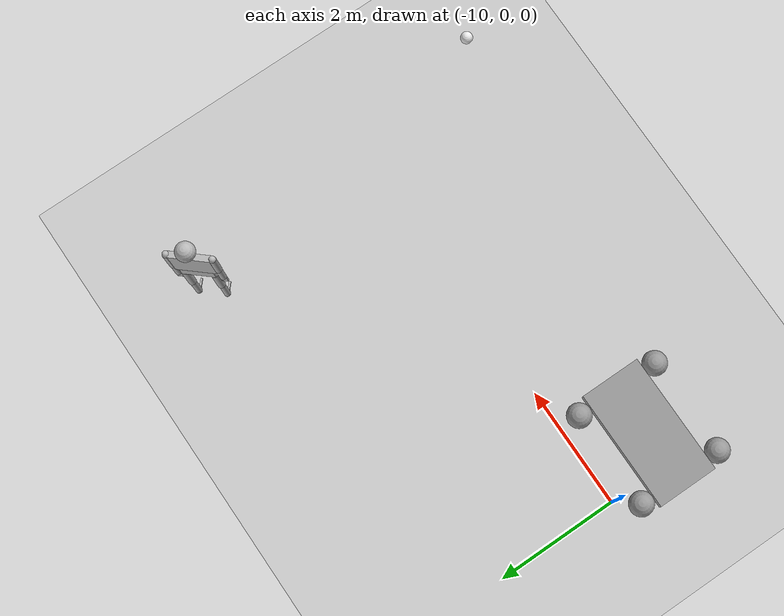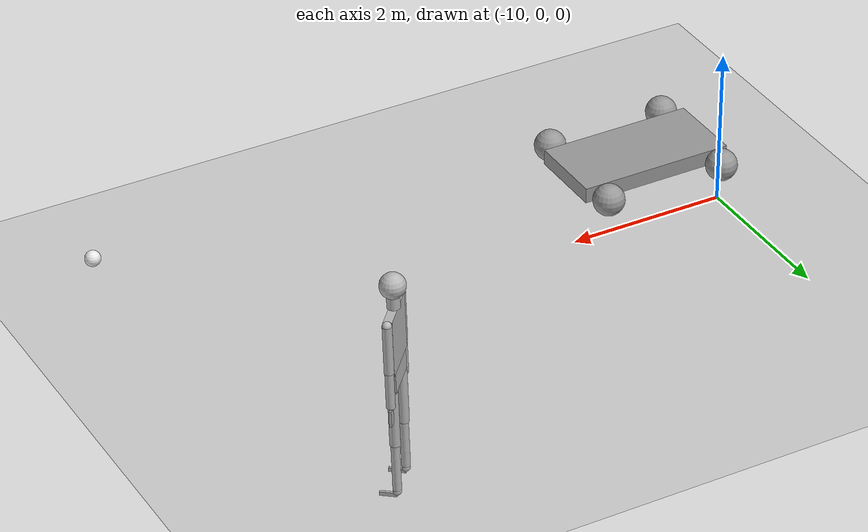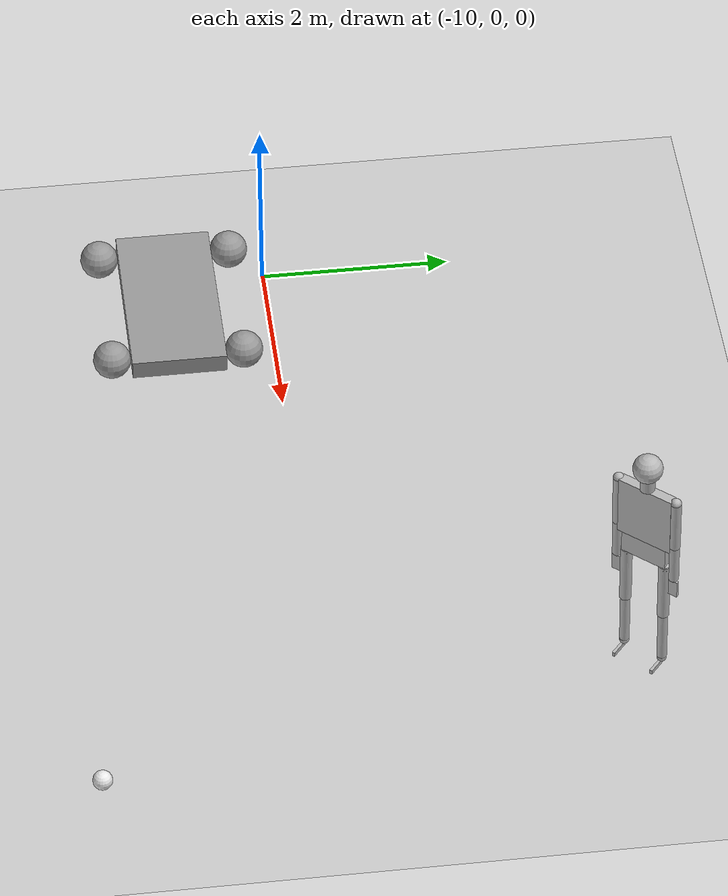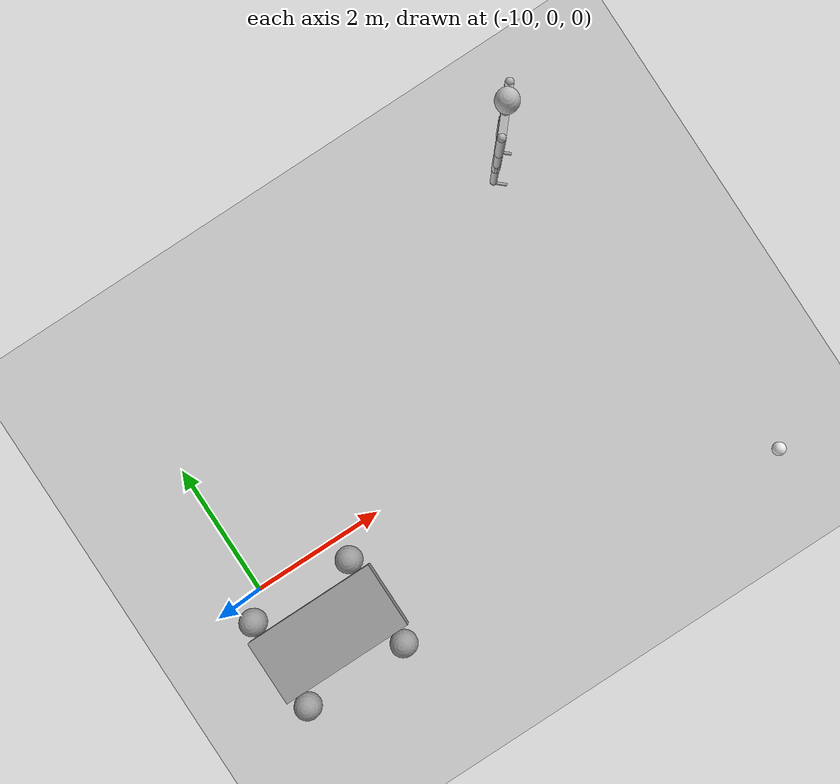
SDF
<sdf version="1.6">
 <world name="default">
  <model name="ground_plane">
   <static>1</static>
   <link name="link">
    <collision name="collision">
     <geometry><plane><normal>0 0 1</normal><size>100 100</size></plane></geometry>
     <surface>
      <contact><collide_bitmask>65535</collide_bitmask></contact>
      <friction><ode><mu>100</mu><mu2>50</mu2></ode></friction>
     </surface>
    </collision>
    <visual name="visual">
     <cast_shadows>0</cast_shadows>
     <geometry><plane><normal>0 0 1</normal><size>100 100</size></plane></geometry>
     <material>
      <script><uri>file://media/materials/scripts/gazebo.material</uri><name>Gazebo/Grey</name></script>
     </material>
    </visual>
   </link>
  </model>
  <model name="object">
   <link name="link_0">
    <pose>-2.35749 -2.62116 0.5 0 -0 0</pose>
    <inertial>
     <mass>1</mass>
     <inertia>
      <ixx>0.166667</ixx>
      <ixy>0</ixy>
      <ixz>0</ixz>
      <iyy>0.166667</iyy>
      <iyz>0</iyz>
      <izz>0.166667</izz>
     </inertia>
    </inertial>
    <visual name="visual">
     <geometry><box><size>2 1 0.2</size></box></geometry>
     <material>
      <lighting>1</lighting>
      <script><uri>file://media/materials/scripts/gazebo.material</uri><name>Gazebo/Grey</name></script>
      <shader type="pixel"><normal_map>__default__</normal_map></shader>
      <ambient>0.3 0.3 0.3 1</ambient>
      <diffuse>0.7 0.7 0.7 1</diffuse>
      <specular>0.01 0.01 0.01 1</specular>
      <emissive>0 0 0 1</emissive>
     </material>
    </visual>
    <collision name="collision">
     <geometry><box><size>2 1 0.2</size></box></geometry>
     <surface>
      <friction>
       <ode><mu>1</mu><mu2>1</mu2><fdir1>0 0 0</fdir1><slip1>0</slip1><slip2>0</slip2></ode>
       <torsional>
        <coefficient>1</coefficient>
        <patch_radius>0</patch_radius>
        <surface_radius>0</surface_radius>
        <use_patch_radius>1</use_patch_radius>
        <ode><slip>0</slip></ode>
       </torsional>
      </friction>
      <bounce><restitution_coefficient>0</restitution_coefficient><threshold>1e+06</threshold></bounce>
      <contact>
       <collide_without_contact>0</collide_without_contact>
       <collide_without_contact_bitmask>1</collide_without_contact_bitmask>
       <collide_bitmask>1</collide_bitmask>
       <ode>
        <soft_cfm>0</soft_cfm>
        <soft_erp>0.2</soft_erp>
        <kp>1e+13</kp>
        <kd>1</kd>
        <max_vel>0.01</max_vel>
        <min_depth>0</min_depth>
       </ode>
       <bullet>
        <split_impulse>1</split_impulse>
        <split_impulse_penetration_threshold>-0.01</split_impulse_penetration_threshold>
        <soft_cfm>0</soft_cfm>
        <soft_erp>0.2</soft_erp>
        <kp>1e+13</kp>
        <kd>1</kd>
       </bullet>
      </contact>
     </surface>
    </collision>
   </link>
   <link name="link_3">
    <pose>-3.15749 -3.32116 0.5 0 -0 0</pose>
    <inertial>
     <mass>1</mass>
     <inertia><ixx>0.1</ixx><ixy>0</ixy><ixz>0</ixz><iyy>0.1</iyy><iyz>0</iyz><izz>0.1</izz></inertia>
    </inertial>
    <visual name="visual">
     <geometry><sphere><radius>0.2</radius></sphere></geometry>
     <material>
      <lighting>1</lighting>
      <script><uri>file://media/materials/scripts/gazebo.material</uri><name>Gazebo/Grey</name></script>
      <shader type="pixel"><normal_map>__default__</normal_map></shader>
      <ambient>0.3 0.3 0.3 1</ambient>
      <diffuse>0.7 0.7 0.7 1</diffuse>
      <specular>0.01 0.01 0.01 1</specular>
      <emissive>0 0 0 1</emissive>
     </material>
    </visual>
    <collision name="collision">
     <geometry><sphere><radius>0.2</radius></sphere></geometry>
     <surface>
      <friction>
       <ode><mu>1</mu><mu2>1</mu2><fdir1>0 0 0</fdir1><slip1>0</slip1><slip2>0</slip2></ode>
       <torsional>
        <coefficient>1</coefficient>
        <patch_radius>0</patch_radius>
        <surface_radius>0</surface_radius>
        <use_patch_radius>1</use_patch_radius>
        <ode><slip>0</slip></ode>
       </torsional>
      </friction>
      <bounce><restitution_coefficient>0</restitution_coefficient><threshold>1e+06</threshold></bounce>
      <contact>
       <collide_without_contact>0</collide_without_contact>
       <collide_without_contact_bitmask>1</collide_without_contact_bitmask>
       <collide_bitmask>1</collide_bitmask>
       <ode>
        <soft_cfm>0</soft_cfm>
        <soft_erp>0.2</soft_erp>
        <kp>1e+13</kp>
        <kd>1</kd>
        <max_vel>0.01</max_vel>
        <min_depth>0</min_depth>
       </ode>
       <bullet>
        <split_impulse>1</split_impulse>
        <split_impulse_penetration_threshold>-0.01</split_impulse_penetration_threshold>
        <soft_cfm>0</soft_cfm>
        <soft_erp>0.2</soft_erp>
        <kp>1e+13</kp>
        <kd>1</kd>
       </bullet>
      </contact>
     </surface>
    </collision>
   </link>
   <link name="link_3_clone">
    <pose>-3.15749 -1.92116 0.5 0 -0 0</pose>
    <inertial>
     <mass>1</mass>
     <inertia><ixx>0.1</ixx><ixy>0</ixy><ixz>0</ixz><iyy>0.1</iyy><iyz>0</iyz><izz>0.1</izz></inertia>
    </inertial>
    <visual name="visual">
     <geometry><sphere><radius>0.2</radius></sphere></geometry>
     <material>
      <lighting>1</lighting>
      <script><uri>file://media/materials/scripts/gazebo.material</uri><name>Gazebo/Grey</name></script>
      <shader type="pixel"><normal_map>__default__</normal_map></shader>
      <ambient>0.3 0.3 0.3 1</ambient>
      <diffuse>0.7 0.7 0.7 1</diffuse>
      <specular>0.01 0.01 0.01 1</specular>
      <emissive>0 0 0 1</emissive>
     </material>
    </visual>
    <collision name="collision">
     <geometry><sphere><radius>0.2</radius></sphere></geometry>
     <surface>
      <friction>
       <ode><mu>1</mu><mu2>1</mu2><fdir1>0 0 0</fdir1><slip1>0</slip1><slip2>0</slip2></ode>
       <torsional>
        <coefficient>1</coefficient>
        <patch_radius>0</patch_radius>
        <surface_radius>0</surface_radius>
        <use_patch_radius>1</use_patch_radius>
        <ode><slip>0</slip></ode>
       </torsional>
      </friction>
      <bounce><restitution_coefficient>0</restitution_coefficient><threshold>1e+06</threshold></bounce>
      <contact>
       <collide_without_contact>0</collide_without_contact>
       <collide_without_contact_bitmask>1</collide_without_contact_bitmask>
       <collide_bitmask>1</collide_bitmask>
       <ode>
        <soft_cfm>0</soft_cfm>
        <soft_erp>0.2</soft_erp>
        <kp>1e+13</kp>
        <kd>1</kd>
        <max_vel>0.01</max_vel>
        <min_depth>0</min_depth>
       </ode>
       <bullet>
        <split_impulse>1</split_impulse>
        <split_impulse_penetration_threshold>-0.01</split_impulse_penetration_threshold>
        <soft_cfm>0</soft_cfm>
        <soft_erp>0.2</soft_erp>
        <kp>1e+13</kp>
        <kd>1</kd>
       </bullet>
      </contact>
     </surface>
    </collision>
   </link>
   <link name="link_3_clone_0">
    <pose>-1.55749 -3.32116 0.5 0 -0 0</pose>
    <inertial>
     <mass>1</mass>
     <inertia><ixx>0.1</ixx><ixy>0</ixy><ixz>0</ixz><iyy>0.1</iyy><iyz>0</iyz><izz>0.1</izz></inertia>
    </inertial>
    <visual name="visual">
     <geometry><sphere><radius>0.2</radius></sphere></geometry>
     <material>
      <lighting>1</lighting>
      <script><uri>file://media/materials/scripts/gazebo.material</uri><name>Gazebo/Grey</name></script>
      <shader type="pixel"><normal_map>__default__</normal_map></shader>
      <ambient>0.3 0.3 0.3 1</ambient>
      <diffuse>0.7 0.7 0.7 1</diffuse>
      <specular>0.01 0.01 0.01 1</specular>
      <emissive>0 0 0 1</emissive>
     </material>
    </visual>
    <collision name="collision">
     <geometry><sphere><radius>0.2</radius></sphere></geometry>
     <surface>
      <friction>
       <ode><mu>1</mu><mu2>1</mu2><fdir1>0 0 0</fdir1><slip1>0</slip1><slip2>0</slip2></ode>
       <torsional>
        <coefficient>1</coefficient>
        <patch_radius>0</patch_radius>
        <surface_radius>0</surface_radius>
        <use_patch_radius>1</use_patch_radius>
        <ode><slip>0</slip></ode>
       </torsional>
      </friction>
      <bounce><restitution_coefficient>0</restitution_coefficient><threshold>1e+06</threshold></bounce>
      <contact>
       <collide_without_contact>0</collide_without_contact>
       <collide_without_contact_bitmask>1</collide_without_contact_bitmask>
       <collide_bitmask>1</collide_bitmask>
       <ode>
        <soft_cfm>0</soft_cfm>
        <soft_erp>0.2</soft_erp>
        <kp>1e+13</kp>
        <kd>1</kd>
        <max_vel>0.01</max_vel>
        <min_depth>0</min_depth>
       </ode>
       <bullet>
        <split_impulse>1</split_impulse>
        <split_impulse_penetration_threshold>-0.01</split_impulse_penetration_threshold>
        <soft_cfm>0</soft_cfm>
        <soft_erp>0.2</soft_erp>
        <kp>1e+13</kp>
        <kd>1</kd>
       </bullet>
      </contact>
     </surface>
    </collision>
   </link>
   <link name="link_3_clone_1">
    <pose>-1.55749 -1.92116 0.5 0 -0 0</pose>
    <inertial>
     <mass>1</mass>
     <inertia><ixx>0.1</ixx><ixy>0</ixy><ixz>0</ixz><iyy>0.1</iyy><iyz>0</iyz><izz>0.1</izz></inertia>
    </inertial>
    <visual name="visual">
     <geometry><sphere><radius>0.2</radius></sphere></geometry>
     <material>
      <lighting>1</lighting>
      <script><uri>file://media/materials/scripts/gazebo.material</uri><name>Gazebo/Grey</name></script>
      <shader type="pixel"><normal_map>__default__</normal_map></shader>
      <ambient>0.3 0.3 0.3 1</ambient>
      <diffuse>0.7 0.7 0.7 1</diffuse>
      <specular>0.01 0.01 0.01 1</specular>
      <emissive>0 0 0 1</emissive>
     </material>
    </visual>
    <collision name="collision">
     <geometry><sphere><radius>0.2</radius></sphere></geometry>
     <surface>
      <friction>
       <ode><mu>1</mu><mu2>1</mu2><fdir1>0 0 0</fdir1><slip1>0</slip1><slip2>0</slip2></ode>
       <torsional>
        <coefficient>1</coefficient>
        <patch_radius>0</patch_radius>
        <surface_radius>0</surface_radius>
        <use_patch_radius>1</use_patch_radius>
        <ode><slip>0</slip></ode>
       </torsional>
      </friction>
      <bounce><restitution_coefficient>0</restitution_coefficient><threshold>1e+06</threshold></bounce>
      <contact>
       <collide_without_contact>0</collide_without_contact>
       <collide_without_contact_bitmask>1</collide_without_contact_bitmask>
       <collide_bitmask>1</collide_bitmask>
       <ode>
        <soft_cfm>0</soft_cfm>
        <soft_erp>0.2</soft_erp>
        <kp>1e+13</kp>
        <kd>1</kd>
        <max_vel>0.01</max_vel>
        <min_depth>0</min_depth>
       </ode>
       <bullet>
        <split_impulse>1</split_impulse>
        <split_impulse_penetration_threshold>-0.01</split_impulse_penetration_threshold>
        <soft_cfm>0</soft_cfm>
        <soft_erp>0.2</soft_erp>
        <kp>1e+13</kp>
        <kd>1</kd>
       </bullet>
      </contact>
     </surface>
    </collision>
   </link>
   <joint name="link_0_JOINT_0" type="revolute">
    <parent>link_0</parent>
    <child>link_3</child>
    <axis>
     <xyz>0 0 1</xyz>
     <limit>
      <lower>-1.79769e+308</lower>
      <upper>1.79769e+308</upper>
      <effort>-1</effort>
      <velocity>-1</velocity>
     </limit>
     <dynamics>
      <spring_reference>0</spring_reference>
      <spring_stiffness>0</spring_stiffness>
      <damping>0</damping>
     </dynamics>
     <use_parent_model_frame>0</use_parent_model_frame>
    </axis>
    <physics>
     <ode><limit><cfm>0</cfm><erp>0.2</erp></limit><suspension><cfm>0</cfm><erp>0.2</erp></suspension></ode>
    </physics>
   </joint>
   <joint name="link_0_JOINT_1" type="revolute">
    <parent>link_0</parent>
    <child>link_3_clone</child>
    <axis>
     <xyz>0 0 1</xyz>
     <limit>
      <lower>-1.79769e+308</lower>
      <upper>1.79769e+308</upper>
      <effort>-1</effort>
      <velocity>-1</velocity>
     </limit>
     <dynamics>
      <spring_reference>0</spring_reference>
      <spring_stiffness>0</spring_stiffness>
      <damping>0</damping>
     </dynamics>
     <use_parent_model_frame>0</use_parent_model_frame>
    </axis>
    <physics>
     <ode><limit><cfm>0</cfm><erp>0.2</erp></limit><suspension><cfm>0</cfm><erp>0.2</erp></suspension></ode>
    </physics>
   </joint>
   <joint name="link_0_JOINT_2" type="revolute">
    <parent>link_0</parent>
    <child>link_3_clone_0</child>
    <axis>
     <xyz>0 0 1</xyz>
     <limit>
      <lower>-1.79769e+308</lower>
      <upper>1.79769e+308</upper>
      <effort>-1</effort>
      <velocity>-1</velocity>
     </limit>
     <dynamics>
      <spring_reference>0</spring_reference>
      <spring_stiffness>0</spring_stiffness>
      <damping>0</damping>
     </dynamics>
     <use_parent_model_frame>0</use_parent_model_frame>
    </axis>
    <physics>
     <ode><limit><cfm>0</cfm><erp>0.2</erp></limit><suspension><cfm>0</cfm><erp>0.2</erp></suspension></ode>
    </physics>
   </joint>
   <joint name="link_0_JOINT_3" type="revolute">
    <parent>link_0</parent>
    <child>link_3_clone_1</child>
    <axis>
     <xyz>0 0 1</xyz>
     <limit>
      <lower>-1.79769e+308</lower>
      <upper>1.79769e+308</upper>
      <effort>-1</effort>
      <velocity>-1</velocity>
     </limit>
     <dynamics>
      <spring_reference>0</spring_reference>
      <spring_stiffness>0</spring_stiffness>
      <damping>0</damping>
     </dynamics>
     <use_parent_model_frame>0</use_parent_model_frame>
    </axis>
    <physics>
     <ode><limit><cfm>0</cfm><erp>0.2</erp></limit><suspension><cfm>0</cfm><erp>0.2</erp></suspension></ode>
    </physics>
   </joint>
   <static>0</static>
   <pose>-7.11301 1.58739 -0.300001 -2e-06 -2e-06 0.000972</pose>
  </model>
  <model name="ragdoll_0">
   <pose>-3.89663 3.14261 1.39996 0.000168 0.031876 -0.717639</pose>
   <link name="hip">
    <inertial>
     <inertia><ixx>0.1</ixx><ixy>0</ixy><ixz>0</ixz><iyy>0.1</iyy><iyz>0</iyz><izz>0.1</izz></inertia>
     <mass>10</mass>
    </inertial>
    <collision name="hip_geom">
     <pose>0 0 0.125 0 -0 0</pose>
     <geometry><box><size>0.1 0.5 0.25</size></box></geometry>
     <surface>
      <friction><ode><mu>-1</mu><mu2>-1</mu2><fdir1>0 0 0</fdir1><slip1>0</slip1><slip2>0</slip2></ode></friction>
      <bounce><restitution_coefficient>0</restitution_coefficient><threshold>100000</threshold></bounce>
      <contact>
       <ode>
        <soft_cfm>0</soft_cfm>
        <soft_erp>0.2</soft_erp>
        <kp>1e+12</kp>
        <kd>1</kd>
        <max_vel>0</max_vel>
        <min_depth>0.001</min_depth>
       </ode>
      </contact>
     </surface>
    </collision>
    <visual name="hip_geom_visual">
     <pose>0 0 0.125 0 -0 0</pose>
     <geometry><box><size>0.1 0.5 0.25</size></box></geometry>
    </visual>
    <gravity>0</gravity>
   </link>
   <link name="l_thigh_pan">
    <pose>0 0.22 0 0 -0 0</pose>
    <inertial>
     <inertia><ixx>0.01</ixx><ixy>0</ixy><ixz>0</ixz><iyy>0.01</iyy><iyz>0</iyz><izz>0.01</izz></inertia>
     <mass>1</mass>
    </inertial>
    <collision name="l_thigh_pan_geom">
     <pose>0 0 -0.03 0 -0 0</pose>
     <geometry><sphere><radius>0.06</radius></sphere></geometry>
     <surface>
      <friction><ode><mu>-1</mu><mu2>-1</mu2><fdir1>0 0 0</fdir1><slip1>0</slip1><slip2>0</slip2></ode></friction>
      <bounce><restitution_coefficient>0</restitution_coefficient><threshold>100000</threshold></bounce>
      <contact>
       <ode>
        <soft_cfm>0</soft_cfm>
        <soft_erp>0.2</soft_erp>
        <kp>1e+12</kp>
        <kd>1</kd>
        <max_vel>0</max_vel>
        <min_depth>0.001</min_depth>
       </ode>
      </contact>
     </surface>
    </collision>
    <visual name="l_thigh_pan_geom_visual">
     <pose>0 0 -0.03 0 -0 0</pose>
     <geometry><sphere><radius>0.06</radius></sphere></geometry>
    </visual>
    <gravity>0</gravity>
   </link>
   <link name="l_thigh_lift">
    <pose>0 0.22 0 0 -0 0</pose>
    <inertial>
     <inertia><ixx>0.05</ixx><ixy>0</ixy><ixz>0</ixz><iyy>0.05</iyy><iyz>0</iyz><izz>0.05</izz></inertia>
     <mass>5</mass>
    </inertial>
    <collision name="l_thigh_lift_geom">
     <pose>0 0 -0.35 0 -0 0</pose>
     <geometry><cylinder><radius>0.06</radius><length>0.7</length></cylinder></geometry>
     <surface>
      <friction><ode><mu>-1</mu><mu2>-1</mu2><fdir1>0 0 0</fdir1><slip1>0</slip1><slip2>0</slip2></ode></friction>
      <bounce><restitution_coefficient>0</restitution_coefficient><threshold>100000</threshold></bounce>
      <contact>
       <ode>
        <soft_cfm>0</soft_cfm>
        <soft_erp>0.2</soft_erp>
        <kp>1e+12</kp>
        <kd>1</kd>
        <max_vel>0</max_vel>
        <min_depth>0.001</min_depth>
       </ode>
      </contact>
     </surface>
    </collision>
    <visual name="l_thigh_lift_geom_visual">
     <pose>0 0 -0.35 0 -0 0</pose>
     <geometry><cylinder><radius>0.06</radius><length>0.7</length></cylinder></geometry>
    </visual>
    <gravity>0</gravity>
   </link>
   <link name="l_calf">
    <pose>0 0.22 -0.7 0 -0 0</pose>
    <inertial>
     <inertia><ixx>0.02</ixx><ixy>0</ixy><ixz>0</ixz><iyy>0.02</iyy><iyz>0</iyz><izz>0.02</izz></inertia>
     <mass>2</mass>
    </inertial>
    <collision name="l_calf_geom">
     <pose>0 0 -0.3 0 -0 0</pose>
     <geometry><cylinder><radius>0.05</radius><length>0.6</length></cylinder></geometry>
     <surface>
      <friction><ode><mu>-1</mu><mu2>-1</mu2><fdir1>0 0 0</fdir1><slip1>0</slip1><slip2>0</slip2></ode></friction>
      <bounce><restitution_coefficient>0</restitution_coefficient><threshold>100000</threshold></bounce>
      <contact>
       <ode>
        <soft_cfm>0</soft_cfm>
        <soft_erp>0.2</soft_erp>
        <kp>1e+12</kp>
        <kd>1</kd>
        <max_vel>0</max_vel>
        <min_depth>0.001</min_depth>
       </ode>
      </contact>
     </surface>
    </collision>
    <visual name="l_calf_geom_visual">
     <pose>0 0 -0.3 0 -0 0</pose>
     <geometry><cylinder><radius>0.05</radius><length>0.6</length></cylinder></geometry>
    </visual>
    <gravity>0</gravity>
   </link>
   <link name="l_ankle">
    <pose>0 0.22 -1.325 0 -0 0</pose>
    <inertial>
     <inertia><ixx>0.01</ixx><ixy>0</ixy><ixz>0</ixz><iyy>0.01</iyy><iyz>0</iyz><izz>0.01</izz></inertia>
     <mass>1</mass>
    </inertial>
    <collision name="l_ankle_geom">
     <geometry><sphere><radius>0.05</radius></sphere></geometry>
     <surface>
      <friction><ode><mu>-1</mu><mu2>-1</mu2><fdir1>0 0 0</fdir1><slip1>0</slip1><slip2>0</slip2></ode></friction>
      <bounce><restitution_coefficient>0</restitution_coefficient><threshold>100000</threshold></bounce>
      <contact>
       <ode>
        <soft_cfm>0</soft_cfm>
        <soft_erp>0.2</soft_erp>
        <kp>1e+12</kp>
        <kd>1</kd>
        <max_vel>0</max_vel>
        <min_depth>0.001</min_depth>
       </ode>
      </contact>
     </surface>
    </collision>
    <visual name="l_ankle_geom_visual"><geometry><sphere><radius>0.05</radius></sphere></geometry></visual>
    <gravity>0</gravity>
   </link>
   <link name="l_foot">
    <pose>0 0.22 -1.35 0 -0 0</pose>
    <inertial>
     <pose>0.1 0 0 0 -0 0</pose>
     <inertia><ixx>0.01</ixx><ixy>0</ixy><ixz>0</ixz><iyy>0.01</iyy><iyz>0</iyz><izz>0.01</izz></inertia>
     <mass>1</mass>
    </inertial>
    <collision name="l_foot_geom">
     <pose>0.1 0 -0.025 0 -0 0</pose>
     <geometry><box><size>0.2 0.03 0.05</size></box></geometry>
     <surface>
      <friction><ode><mu>-1</mu><mu2>-1</mu2><fdir1>0 0 0</fdir1><slip1>0</slip1><slip2>0</slip2></ode></friction>
      <bounce><restitution_coefficient>0</restitution_coefficient><threshold>100000</threshold></bounce>
      <contact>
       <ode>
        <soft_cfm>0</soft_cfm>
        <soft_erp>0.2</soft_erp>
        <kp>1e+12</kp>
        <kd>1</kd>
        <max_vel>0</max_vel>
        <min_depth>0.001</min_depth>
       </ode>
      </contact>
     </surface>
    </collision>
    <visual name="l_foot_geom_visual">
     <pose>0.1 0 -0.025 0 -0 0</pose>
     <geometry><box><size>0.2 0.03 0.05</size></box></geometry>
    </visual>
   </link>
   <link name="r_thigh_pan">
    <pose>0 -0.22 0 0 -0 0</pose>
    <inertial>
     <inertia><ixx>0.01</ixx><ixy>0</ixy><ixz>0</ixz><iyy>0.01</iyy><iyz>0</iyz><izz>0.01</izz></inertia>
     <mass>1</mass>
    </inertial>
    <collision name="r_thigh_pan_geom">
     <pose>0 0 -0.03 0 -0 0</pose>
     <geometry><sphere><radius>0.06</radius></sphere></geometry>
     <surface>
      <friction><ode><mu>-1</mu><mu2>-1</mu2><fdir1>0 0 0</fdir1><slip1>0</slip1><slip2>0</slip2></ode></friction>
      <bounce><restitution_coefficient>0</restitution_coefficient><threshold>100000</threshold></bounce>
      <contact>
       <ode>
        <soft_cfm>0</soft_cfm>
        <soft_erp>0.2</soft_erp>
        <kp>1e+12</kp>
        <kd>1</kd>
        <max_vel>0</max_vel>
        <min_depth>0.001</min_depth>
       </ode>
      </contact>
     </surface>
    </collision>
    <visual name="r_thigh_pan_geom_visual">
     <pose>0 0 -0.03 0 -0 0</pose>
     <geometry><sphere><radius>0.06</radius></sphere></geometry>
    </visual>
    <gravity>0</gravity>
   </link>
   <link name="r_thigh_lift">
    <pose>0 -0.22 0 0 -0 0</pose>
    <inertial>
     <inertia><ixx>0.05</ixx><ixy>0</ixy><ixz>0</ixz><iyy>0.05</iyy><iyz>0</iyz><izz>0.05</izz></inertia>
     <mass>5</mass>
    </inertial>
    <collision name="r_thigh_lift_geom">
     <pose>0 0 -0.35 0 -0 0</pose>
     <geometry><cylinder><radius>0.06</radius><length>0.7</length></cylinder></geometry>
     <surface>
      <friction><ode><mu>-1</mu><mu2>-1</mu2><fdir1>0 0 0</fdir1><slip1>0</slip1><slip2>0</slip2></ode></friction>
      <bounce><restitution_coefficient>0</restitution_coefficient><threshold>100000</threshold></bounce>
      <contact>
       <ode>
        <soft_cfm>0</soft_cfm>
        <soft_erp>0.2</soft_erp>
        <kp>1e+12</kp>
        <kd>1</kd>
        <max_vel>0</max_vel>
        <min_depth>0.001</min_depth>
       </ode>
      </contact>
     </surface>
    </collision>
    <visual name="r_thigh_lift_geom_visual">
     <pose>0 0 -0.35 0 -0 0</pose>
     <geometry><cylinder><radius>0.06</radius><length>0.7</length></cylinder></geometry>
    </visual>
    <gravity>0</gravity>
   </link>
   <link name="r_calf">
    <pose>0 -0.22 -0.7 0 -0 0</pose>
    <inertial>
     <inertia><ixx>0.02</ixx><ixy>0</ixy><ixz>0</ixz><iyy>0.02</iyy><iyz>0</iyz><izz>0.02</izz></inertia>
     <mass>2</mass>
    </inertial>
    <collision name="r_calf_geom">
     <pose>0 0 -0.3 0 -0 0</pose>
     <geometry><cylinder><radius>0.05</radius><length>0.6</length></cylinder></geometry>
     <surface>
      <friction><ode><mu>-1</mu><mu2>-1</mu2><fdir1>0 0 0</fdir1><slip1>0</slip1><slip2>0</slip2></ode></friction>
      <bounce><restitution_coefficient>0</restitution_coefficient><threshold>100000</threshold></bounce>
      <contact>
       <ode>
        <soft_cfm>0</soft_cfm>
        <soft_erp>0.2</soft_erp>
        <kp>1e+12</kp>
        <kd>1</kd>
        <max_vel>0</max_vel>
        <min_depth>0.001</min_depth>
       </ode>
      </contact>
     </surface>
    </collision>
    <visual name="r_calf_geom_visual">
     <pose>0 0 -0.3 0 -0 0</pose>
     <geometry><cylinder><radius>0.05</radius><length>0.6</length></cylinder></geometry>
    </visual>
    <gravity>0</gravity>
   </link>
   <link name="r_ankle">
    <pose>0 -0.22 -1.325 0 -0 0</pose>
    <inertial>
     <inertia><ixx>0.01</ixx><ixy>0</ixy><ixz>0</ixz><iyy>0.01</iyy><iyz>0</iyz><izz>0.01</izz></inertia>
     <mass>1</mass>
    </inertial>
    <collision name="r_ankle_geom">
     <geometry><sphere><radius>0.05</radius></sphere></geometry>
     <surface>
      <friction><ode><mu>-1</mu><mu2>-1</mu2><fdir1>0 0 0</fdir1><slip1>0</slip1><slip2>0</slip2></ode></friction>
      <bounce><restitution_coefficient>0</restitution_coefficient><threshold>100000</threshold></bounce>
      <contact>
       <ode>
        <soft_cfm>0</soft_cfm>
        <soft_erp>0.2</soft_erp>
        <kp>1e+12</kp>
        <kd>1</kd>
        <max_vel>0</max_vel>
        <min_depth>0.001</min_depth>
       </ode>
      </contact>
     </surface>
    </collision>
    <visual name="r_ankle_geom_visual"><geometry><sphere><radius>0.05</radius></sphere></geometry></visual>
    <gravity>0</gravity>
   </link>
   <link name="r_foot">
    <pose>0 -0.22 -1.35 0 -0 0</pose>
    <inertial>
     <pose>0.1 0 0 0 -0 0</pose>
     <inertia><ixx>0.01</ixx><ixy>0</ixy><ixz>0</ixz><iyy>0.01</iyy><iyz>0</iyz><izz>0.01</izz></inertia>
     <mass>1</mass>
    </inertial>
    <collision name="r_foot_geom">
     <pose>0.1 0 -0.025 0 -0 0</pose>
     <geometry><box><size>0.2 0.03 0.05</size></box></geometry>
     <surface>
      <friction><ode><mu>-1</mu><mu2>-1</mu2><fdir1>0 0 0</fdir1><slip1>0</slip1><slip2>0</slip2></ode></friction>
      <bounce><restitution_coefficient>0</restitution_coefficient><threshold>100000</threshold></bounce>
      <contact>
       <ode>
        <soft_cfm>0</soft_cfm>
        <soft_erp>0.2</soft_erp>
        <kp>1e+12</kp>
        <kd>1</kd>
        <max_vel>0</max_vel>
        <min_depth>0.001</min_depth>
       </ode>
      </contact>
     </surface>
    </collision>
    <visual name="r_foot_geom_visual">
     <pose>0.1 0 -0.025 0 -0 0</pose>
     <geometry><box><size>0.2 0.03 0.05</size></box></geometry>
    </visual>
   </link>
   <link name="torso">
    <pose>0 0 0.25 0 -0 0</pose>
    <inertial>
     <inertia><ixx>0.3</ixx><ixy>0</ixy><ixz>0</ixz><iyy>0.3</iyy><iyz>0</iyz><izz>0.3</izz></inertia>
     <mass>30</mass>
    </inertial>
    <collision name="torso_geom">
     <pose>0 0 0.35 0 -0 0</pose>
     <geometry><box><size>0.1 0.6 0.7</size></box></geometry>
     <surface>
      <friction><ode><mu>-1</mu><mu2>-1</mu2><fdir1>0 0 0</fdir1><slip1>0</slip1><slip2>0</slip2></ode></friction>
      <bounce><restitution_coefficient>0</restitution_coefficient><threshold>100000</threshold></bounce>
      <contact>
       <ode>
        <soft_cfm>0</soft_cfm>
        <soft_erp>0.2</soft_erp>
        <kp>1e+12</kp>
        <kd>1</kd>
        <max_vel>0</max_vel>
        <min_depth>0.001</min_depth>
       </ode>
      </contact>
     </surface>
    </collision>
    <visual name="torso_geom_visual">
     <pose>0 0 0.35 0 -0 0</pose>
     <geometry><box><size>0.1 0.6 0.7</size></box></geometry>
    </visual>
    <gravity>0</gravity>
   </link>
   <link name="l_shoulder">
    <pose>0 0.3275 0.9225 0 -0 0</pose>
    <inertial>
     <inertia><ixx>0.01</ixx><ixy>0</ixy><ixz>0</ixz><iyy>0.01</iyy><iyz>0</iyz><izz>0.01</izz></inertia>
     <mass>1</mass>
    </inertial>
    <collision name="l_shoulder_geom">
     <geometry><sphere><radius>0.055</radius></sphere></geometry>
     <surface>
      <friction><ode><mu>-1</mu><mu2>-1</mu2><fdir1>0 0 0</fdir1><slip1>0</slip1><slip2>0</slip2></ode></friction>
      <bounce><restitution_coefficient>0</restitution_coefficient><threshold>100000</threshold></bounce>
      <contact>
       <ode>
        <soft_cfm>0</soft_cfm>
        <soft_erp>0.2</soft_erp>
        <kp>1e+12</kp>
        <kd>1</kd>
        <max_vel>0</max_vel>
        <min_depth>0.001</min_depth>
       </ode>
      </contact>
     </surface>
    </collision>
    <visual name="l_shoulder_geom_visual"><geometry><sphere><radius>0.055</radius></sphere></geometry></visual>
    <gravity>0</gravity>
   </link>
   <link name="l_upper_arm">
    <pose>0 0.3275 0.9225 0 -0 0</pose>
    <inertial>
     <inertia><ixx>0.02</ixx><ixy>0</ixy><ixz>0</ixz><iyy>0.02</iyy><iyz>0</iyz><izz>0.02</izz></inertia>
     <mass>2</mass>
    </inertial>
    <collision name="l_upper_arm_geom">
     <pose>0 0 -0.3 0 -0 0</pose>
     <geometry><cylinder><radius>0.055</radius><length>0.6</length></cylinder></geometry>
     <surface>
      <friction><ode><mu>-1</mu><mu2>-1</mu2><fdir1>0 0 0</fdir1><slip1>0</slip1><slip2>0</slip2></ode></friction>
      <bounce><restitution_coefficient>0</restitution_coefficient><threshold>100000</threshold></bounce>
      <contact>
       <ode>
        <soft_cfm>0</soft_cfm>
        <soft_erp>0.2</soft_erp>
        <kp>1e+12</kp>
        <kd>1</kd>
        <max_vel>0</max_vel>
        <min_depth>0.001</min_depth>
       </ode>
      </contact>
     </surface>
    </collision>
    <visual name="l_upper_arm_geom_visual">
     <pose>0 0 -0.3 0 -0 0</pose>
     <geometry><cylinder><radius>0.055</radius><length>0.6</length></cylinder></geometry>
    </visual>
    <gravity>0</gravity>
   </link>
   <link name="l_forearm">
    <pose>0 0.3275 0.3225 0 -0 0</pose>
    <inertial>
     <inertia><ixx>0.01</ixx><ixy>0</ixy><ixz>0</ixz><iyy>0.01</iyy><iyz>0</iyz><izz>0.01</izz></inertia>
     <mass>1</mass>
    </inertial>
    <collision name="l_forearm_geom">
     <pose>0 0 -0.225 0 -0 0</pose>
     <geometry><cylinder><radius>0.05</radius><length>0.45</length></cylinder></geometry>
     <surface>
      <friction><ode><mu>-1</mu><mu2>-1</mu2><fdir1>0 0 0</fdir1><slip1>0</slip1><slip2>0</slip2></ode></friction>
      <bounce><restitution_coefficient>0</restitution_coefficient><threshold>100000</threshold></bounce>
      <contact>
       <ode>
        <soft_cfm>0</soft_cfm>
        <soft_erp>0.2</soft_erp>
        <kp>1e+12</kp>
        <kd>1</kd>
        <max_vel>0</max_vel>
        <min_depth>0.001</min_depth>
       </ode>
      </contact>
     </surface>
    </collision>
    <visual name="l_forearm_geom_visual">
     <pose>0 0 -0.225 0 -0 0</pose>
     <geometry><cylinder><radius>0.05</radius><length>0.45</length></cylinder></geometry>
    </visual>
    <gravity>0</gravity>
   </link>
   <link name="l_wrist">
    <pose>0 0.3275 -0.1425 0 -0 0</pose>
    <inertial>
     <inertia><ixx>0.01</ixx><ixy>0</ixy><ixz>0</ixz><iyy>0.01</iyy><iyz>0</iyz><izz>0.01</izz></inertia>
     <mass>1</mass>
    </inertial>
    <collision name="l_wrist_geom">
     <geometry><sphere><radius>0.03</radius></sphere></geometry>
     <surface>
      <friction><ode><mu>-1</mu><mu2>-1</mu2><fdir1>0 0 0</fdir1><slip1>0</slip1><slip2>0</slip2></ode></friction>
      <bounce><restitution_coefficient>0</restitution_coefficient><threshold>100000</threshold></bounce>
      <contact>
       <ode>
        <soft_cfm>0</soft_cfm>
        <soft_erp>0.2</soft_erp>
        <kp>1e+12</kp>
        <kd>1</kd>
        <max_vel>0</max_vel>
        <min_depth>0.001</min_depth>
       </ode>
      </contact>
     </surface>
    </collision>
    <visual name="l_wrist_geom_visual"><geometry><sphere><radius>0.03</radius></sphere></geometry></visual>
    <gravity>0</gravity>
   </link>
   <link name="l_hand">
    <pose>0 0.3275 -0.1575 0 -0 0</pose>
    <inertial>
     <inertia><ixx>0.01</ixx><ixy>0</ixy><ixz>0</ixz><iyy>0.01</iyy><iyz>0</iyz><izz>0.01</izz></inertia>
     <mass>1</mass>
    </inertial>
    <collision name="l_hand_geom">
     <pose>0 0 -0.1 0 -0 0</pose>
     <geometry><box><size>0.03 0.1 0.2</size></box></geometry>
     <surface>
      <friction><ode><mu>-1</mu><mu2>-1</mu2><fdir1>0 0 0</fdir1><slip1>0</slip1><slip2>0</slip2></ode></friction>
      <bounce><restitution_coefficient>0</restitution_coefficient><threshold>100000</threshold></bounce>
      <contact>
       <ode>
        <soft_cfm>0</soft_cfm>
        <soft_erp>0.2</soft_erp>
        <kp>1e+12</kp>
        <kd>1</kd>
        <max_vel>0</max_vel>
        <min_depth>0.001</min_depth>
       </ode>
      </contact>
     </surface>
    </collision>
    <visual name="l_hand_geom_visual">
     <pose>0 0 -0.1 0 -0 0</pose>
     <geometry><box><size>0.03 0.1 0.2</size></box></geometry>
    </visual>
    <gravity>0</gravity>
   </link>
   <link name="neck">
    <pose>0 0 0.95 0 -0 0</pose>
    <inertial>
     <inertia><ixx>0.01</ixx><ixy>0</ixy><ixz>0</ixz><iyy>0.01</iyy><iyz>0</iyz><izz>0.01</izz></inertia>
     <mass>1</mass>
    </inertial>
    <collision name="neck_geom">
     <pose>0 0 0.1 0 -0 0</pose>
     <geometry><cylinder><radius>0.075</radius><length>0.2</length></cylinder></geometry>
     <surface>
      <friction><ode><mu>-1</mu><mu2>-1</mu2><fdir1>0 0 0</fdir1><slip1>0</slip1><slip2>0</slip2></ode></friction>
      <bounce><restitution_coefficient>0</restitution_coefficient><threshold>100000</threshold></bounce>
      <contact>
       <ode>
        <soft_cfm>0</soft_cfm>
        <soft_erp>0.2</soft_erp>
        <kp>1e+12</kp>
        <kd>1</kd>
        <max_vel>0</max_vel>
        <min_depth>0.001</min_depth>
       </ode>
      </contact>
     </surface>
    </collision>
    <visual name="neck_geom_visual">
     <pose>0 0 0.1 0 -0 0</pose>
     <geometry><cylinder><radius>0.075</radius><length>0.2</length></cylinder></geometry>
    </visual>
    <gravity>0</gravity>
   </link>
   <link name="head">
    <pose>0 0 1.225 0 -0 0</pose>
    <inertial>
     <inertia><ixx>0.1</ixx><ixy>0</ixy><ixz>0</ixz><iyy>0.1</iyy><iyz>0</iyz><izz>0.1</izz></inertia>
     <mass>10</mass>
    </inertial>
    <collision name="head_geom">
     <geometry><sphere><radius>0.15</radius></sphere></geometry>
     <surface>
      <friction><ode><mu>-1</mu><mu2>-1</mu2><fdir1>0 0 0</fdir1><slip1>0</slip1><slip2>0</slip2></ode></friction>
      <bounce><restitution_coefficient>0</restitution_coefficient><threshold>100000</threshold></bounce>
      <contact>
       <ode>
        <soft_cfm>0</soft_cfm>
        <soft_erp>0.2</soft_erp>
        <kp>1e+12</kp>
        <kd>1</kd>
        <max_vel>0</max_vel>
        <min_depth>0.001</min_depth>
       </ode>
      </contact>
     </surface>
    </collision>
    <visual name="head_geom_visual"><geometry><sphere><radius>0.15</radius></sphere></geometry></visual>
    <gravity>0</gravity>
   </link>
   <link name="r_shoulder">
    <pose>0 -0.3275 0.9225 0 -0 0</pose>
    <inertial>
     <inertia><ixx>0.01</ixx><ixy>0</ixy><ixz>0</ixz><iyy>0.01</iyy><iyz>0</iyz><izz>0.01</izz></inertia>
     <mass>1</mass>
    </inertial>
    <collision name="r_shoulder_geom">
     <geometry><sphere><radius>0.055</radius></sphere></geometry>
     <surface>
      <friction><ode><mu>-1</mu><mu2>-1</mu2><fdir1>0 0 0</fdir1><slip1>0</slip1><slip2>0</slip2></ode></friction>
      <bounce><restitution_coefficient>0</restitution_coefficient><threshold>100000</threshold></bounce>
      <contact>
       <ode>
        <soft_cfm>0</soft_cfm>
        <soft_erp>0.2</soft_erp>
        <kp>1e+12</kp>
        <kd>1</kd>
        <max_vel>0</max_vel>
        <min_depth>0.001</min_depth>
       </ode>
      </contact>
     </surface>
    </collision>
    <visual name="r_shoulder_geom_visual"><geometry><sphere><radius>0.055</radius></sphere></geometry></visual>
    <gravity>0</gravity>
   </link>
   <link name="r_upper_arm">
    <pose>0 -0.3275 0.9225 0 -0 0</pose>
    <inertial>
     <inertia><ixx>0.02</ixx><ixy>0</ixy><ixz>0</ixz><iyy>0.02</iyy><iyz>0</iyz><izz>0.02</izz></inertia>
     <mass>2</mass>
    </inertial>
    <collision name="r_upper_arm_geom">
     <pose>0 0 -0.3 0 -0 0</pose>
     <geometry><cylinder><radius>0.055</radius><length>0.6</length></cylinder></geometry>
     <surface>
      <friction><ode><mu>-1</mu><mu2>-1</mu2><fdir1>0 0 0</fdir1><slip1>0</slip1><slip2>0</slip2></ode></friction>
      <bounce><restitution_coefficient>0</restitution_coefficient><threshold>100000</threshold></bounce>
      <contact>
       <ode>
        <soft_cfm>0</soft_cfm>
        <soft_erp>0.2</soft_erp>
        <kp>1e+12</kp>
        <kd>1</kd>
        <max_vel>0</max_vel>
        <min_depth>0.001</min_depth>
       </ode>
      </contact>
     </surface>
    </collision>
    <visual name="r_upper_arm_geom_visual">
     <pose>0 0 -0.3 0 -0 0</pose>
     <geometry><cylinder><radius>0.055</radius><length>0.6</length></cylinder></geometry>
    </visual>
    <gravity>0</gravity>
   </link>
   <link name="r_forearm">
    <pose>0 -0.3275 0.3225 0 -0 0</pose>
    <inertial>
     <inertia><ixx>0.01</ixx><ixy>0</ixy><ixz>0</ixz><iyy>0.01</iyy><iyz>0</iyz><izz>0.01</izz></inertia>
     <mass>1</mass>
    </inertial>
    <collision name="r_forearm_geom">
     <pose>0 0 -0.225 0 -0 0</pose>
     <geometry><cylinder><radius>0.05</radius><length>0.45</length></cylinder></geometry>
     <surface>
      <friction><ode><mu>-1</mu><mu2>-1</mu2><fdir1>0 0 0</fdir1><slip1>0</slip1><slip2>0</slip2></ode></friction>
      <bounce><restitution_coefficient>0</restitution_coefficient><threshold>100000</threshold></bounce>
      <contact>
       <ode>
        <soft_cfm>0</soft_cfm>
        <soft_erp>0.2</soft_erp>
        <kp>1e+12</kp>
        <kd>1</kd>
        <max_vel>0</max_vel>
        <min_depth>0.001</min_depth>
       </ode>
      </contact>
     </surface>
    </collision>
    <visual name="r_forearm_geom_visual">
     <pose>0 0 -0.225 0 -0 0</pose>
     <geometry><cylinder><radius>0.05</radius><length>0.45</length></cylinder></geometry>
    </visual>
    <gravity>0</gravity>
   </link>
   <link name="r_wrist">
    <pose>0 -0.3275 -0.1425 0 -0 0</pose>
    <inertial>
     <inertia><ixx>0.01</ixx><ixy>0</ixy><ixz>0</ixz><iyy>0.01</iyy><iyz>0</iyz><izz>0.01</izz></inertia>
     <mass>1</mass>
    </inertial>
    <collision name="r_wrist_geom">
     <geometry><sphere><radius>0.03</radius></sphere></geometry>
     <surface>
      <friction><ode><mu>-1</mu><mu2>-1</mu2><fdir1>0 0 0</fdir1><slip1>0</slip1><slip2>0</slip2></ode></friction>
      <bounce><restitution_coefficient>0</restitution_coefficient><threshold>100000</threshold></bounce>
      <contact>
       <ode>
        <soft_cfm>0</soft_cfm>
        <soft_erp>0.2</soft_erp>
        <kp>1e+12</kp>
        <kd>1</kd>
        <max_vel>0</max_vel>
        <min_depth>0.001</min_depth>
       </ode>
      </contact>
     </surface>
    </collision>
    <visual name="r_wrist_geom_visual"><geometry><sphere><radius>0.03</radius></sphere></geometry></visual>
    <gravity>0</gravity>
   </link>
   <link name="r_hand">
    <pose>0 -0.3275 -0.1575 0 -0 0</pose>
    <inertial>
     <inertia><ixx>0.01</ixx><ixy>0</ixy><ixz>0</ixz><iyy>0.01</iyy><iyz>0</iyz><izz>0.01</izz></inertia>
     <mass>1</mass>
    </inertial>
    <collision name="r_hand_geom">
     <pose>0 0 -0.1 0 -0 0</pose>
     <geometry><box><size>0.03 0.1 0.2</size></box></geometry>
     <surface>
      <friction><ode><mu>-1</mu><mu2>-1</mu2><fdir1>0 0 0</fdir1><slip1>0</slip1><slip2>0</slip2></ode></friction>
      <bounce><restitution_coefficient>0</restitution_coefficient><threshold>100000</threshold></bounce>
      <contact>
       <ode>
        <soft_cfm>0</soft_cfm>
        <soft_erp>0.2</soft_erp>
        <kp>1e+12</kp>
        <kd>1</kd>
        <max_vel>0</max_vel>
        <min_depth>0.001</min_depth>
       </ode>
      </contact>
     </surface>
    </collision>
    <visual name="r_hand_geom_visual">
     <pose>0 0 -0.1 0 -0 0</pose>
     <geometry><box><size>0.03 0.1 0.2</size></box></geometry>
    </visual>
    <gravity>0</gravity>
   </link>
   <joint name="l_thigh_pan_joint" type="revolute">
    <parent>hip</parent>
    <child>l_thigh_pan</child>
    <axis>
     <dynamics>
      <damping>0</damping>
      <friction>0</friction>
      <spring_reference>0</spring_reference>
      <spring_stiffness>0</spring_stiffness>
     </dynamics>
     <limit><lower>-1.5708</lower><upper>1.5708</upper><effort>0</effort><velocity>0</velocity></limit>
     <xyz>0 0 1</xyz>
     <use_parent_model_frame>0</use_parent_model_frame>
    </axis>
   </joint>
   <joint name="l_thigh_lift_joint" type="revolute">
    <parent>l_thigh_pan</parent>
    <child>l_thigh_lift</child>
    <axis>
     <dynamics>
      <damping>0</damping>
      <friction>0</friction>
      <spring_reference>0</spring_reference>
      <spring_stiffness>0</spring_stiffness>
     </dynamics>
     <limit><lower>-1.5708</lower><upper>1.5708</upper><effort>0</effort><velocity>0</velocity></limit>
     <xyz>0 1 0</xyz>
     <use_parent_model_frame>0</use_parent_model_frame>
    </axis>
   </joint>
   <joint name="l_calf_joint" type="revolute">
    <parent>l_thigh_lift</parent>
    <child>l_calf</child>
    <axis>
     <dynamics>
      <damping>0</damping>
      <friction>0</friction>
      <spring_reference>0</spring_reference>
      <spring_stiffness>0</spring_stiffness>
     </dynamics>
     <limit><lower>-1.5708</lower><upper>1.5708</upper><effort>0</effort><velocity>0</velocity></limit>
     <xyz>0 1 0</xyz>
     <use_parent_model_frame>0</use_parent_model_frame>
    </axis>
   </joint>
   <joint name="l_ankle_joint" type="revolute">
    <parent>l_calf</parent>
    <child>l_ankle</child>
    <axis>
     <dynamics>
      <damping>0</damping>
      <friction>0</friction>
      <spring_reference>0</spring_reference>
      <spring_stiffness>0</spring_stiffness>
     </dynamics>
     <limit><lower>-1.5708</lower><upper>1.5708</upper><effort>0</effort><velocity>0</velocity></limit>
     <xyz>0 1 0</xyz>
     <use_parent_model_frame>0</use_parent_model_frame>
    </axis>
   </joint>
   <joint name="l_foot_joint" type="revolute">
    <parent>l_ankle</parent>
    <child>l_foot</child>
    <axis>
     <dynamics>
      <damping>0</damping>
      <friction>0</friction>
      <spring_reference>0</spring_reference>
      <spring_stiffness>0</spring_stiffness>
     </dynamics>
     <limit><lower>-1.5708</lower><upper>1.5708</upper><effort>0</effort><velocity>0</velocity></limit>
     <xyz>1 0 0</xyz>
     <use_parent_model_frame>0</use_parent_model_frame>
    </axis>
   </joint>
   <joint name="r_thigh_pan_joint" type="revolute">
    <parent>hip</parent>
    <child>r_thigh_pan</child>
    <axis>
     <dynamics>
      <damping>0</damping>
      <friction>0</friction>
      <spring_reference>0</spring_reference>
      <spring_stiffness>0</spring_stiffness>
     </dynamics>
     <limit><lower>-1.5708</lower><upper>1.5708</upper><effort>0</effort><velocity>0</velocity></limit>
     <xyz>0 0 1</xyz>
     <use_parent_model_frame>0</use_parent_model_frame>
    </axis>
   </joint>
   <joint name="r_thigh_lift_joint" type="revolute">
    <parent>r_thigh_pan</parent>
    <child>r_thigh_lift</child>
    <axis>
     <dynamics>
      <damping>0</damping>
      <friction>0</friction>
      <spring_reference>0</spring_reference>
      <spring_stiffness>0</spring_stiffness>
     </dynamics>
     <limit><lower>-1.5708</lower><upper>1.5708</upper><effort>0</effort><velocity>0</velocity></limit>
     <xyz>0 1 0</xyz>
     <use_parent_model_frame>0</use_parent_model_frame>
    </axis>
   </joint>
   <joint name="r_calf_joint" type="revolute">
    <parent>r_thigh_lift</parent>
    <child>r_calf</child>
    <axis>
     <dynamics>
      <damping>0</damping>
      <friction>0</friction>
      <spring_reference>0</spring_reference>
      <spring_stiffness>0</spring_stiffness>
     </dynamics>
     <limit><lower>-1.5708</lower><upper>1.5708</upper><effort>0</effort><velocity>0</velocity></limit>
     <xyz>0 1 0</xyz>
     <use_parent_model_frame>0</use_parent_model_frame>
    </axis>
   </joint>
   <joint name="r_ankle_joint" type="revolute">
    <parent>r_calf</parent>
    <child>r_ankle</child>
    <axis>
     <dynamics>
      <damping>0</damping>
      <friction>0</friction>
      <spring_reference>0</spring_reference>
      <spring_stiffness>0</spring_stiffness>
     </dynamics>
     <limit><lower>-1.5708</lower><upper>1.5708</upper><effort>0</effort><velocity>0</velocity></limit>
     <xyz>0 1 0</xyz>
     <use_parent_model_frame>0</use_parent_model_frame>
    </axis>
   </joint>
   <joint name="r_foot_joint" type="revolute">
    <parent>r_ankle</parent>
    <child>r_foot</child>
    <axis>
     <dynamics>
      <damping>0</damping>
      <friction>0</friction>
      <spring_reference>0</spring_reference>
      <spring_stiffness>0</spring_stiffness>
     </dynamics>
     <limit><lower>-1.5708</lower><upper>1.5708</upper><effort>0</effort><velocity>0</velocity></limit>
     <xyz>1 0 0</xyz>
     <use_parent_model_frame>0</use_parent_model_frame>
    </axis>
   </joint>
   <joint name="torso_joint" type="revolute">
    <parent>hip</parent>
    <child>torso</child>
    <axis>
     <dynamics>
      <damping>0</damping>
      <friction>0</friction>
      <spring_reference>0</spring_reference>
      <spring_stiffness>0</spring_stiffness>
     </dynamics>
     <limit><lower>-1.5708</lower><upper>1.5708</upper><effort>0</effort><velocity>0</velocity></limit>
     <xyz>0 1 0</xyz>
     <use_parent_model_frame>0</use_parent_model_frame>
    </axis>
   </joint>
   <joint name="l_shoulder_joint" type="revolute">
    <parent>torso</parent>
    <child>l_shoulder</child>
    <axis>
     <dynamics>
      <damping>0</damping>
      <friction>0</friction>
      <spring_reference>0</spring_reference>
      <spring_stiffness>0</spring_stiffness>
     </dynamics>
     <limit><lower>-1.5708</lower><upper>1.5708</upper><effort>0</effort><velocity>0</velocity></limit>
     <xyz>1 0 0</xyz>
     <use_parent_model_frame>0</use_parent_model_frame>
    </axis>
   </joint>
   <joint name="l_upper_arm_joint" type="revolute">
    <parent>l_shoulder</parent>
    <child>l_upper_arm</child>
    <axis>
     <dynamics>
      <damping>0</damping>
      <friction>0</friction>
      <spring_reference>0</spring_reference>
      <spring_stiffness>0</spring_stiffness>
     </dynamics>
     <limit><lower>-1.5708</lower><upper>1.5708</upper><effort>0</effort><velocity>0</velocity></limit>
     <xyz>0 1 0</xyz>
     <use_parent_model_frame>0</use_parent_model_frame>
    </axis>
   </joint>
   <joint name="l_forearm_joint" type="revolute">
    <parent>l_upper_arm</parent>
    <child>l_forearm</child>
    <axis>
     <dynamics>
      <damping>0</damping>
      <friction>0</friction>
      <spring_reference>0</spring_reference>
      <spring_stiffness>0</spring_stiffness>
     </dynamics>
     <limit><lower>-1.5708</lower><upper>1.5708</upper><effort>0</effort><velocity>0</velocity></limit>
     <xyz>0 1 0</xyz>
     <use_parent_model_frame>0</use_parent_model_frame>
    </axis>
   </joint>
   <joint name="l_wrist_joint" type="revolute">
    <parent>l_forearm</parent>
    <child>l_wrist</child>
    <axis>
     <dynamics>
      <damping>0</damping>
      <friction>0</friction>
      <spring_reference>0</spring_reference>
      <spring_stiffness>0</spring_stiffness>
     </dynamics>
     <limit><lower>-1.5708</lower><upper>1.5708</upper><effort>0</effort><velocity>0</velocity></limit>
     <xyz>0 1 0</xyz>
     <use_parent_model_frame>0</use_parent_model_frame>
    </axis>
   </joint>
   <joint name="l_hand_joint" type="revolute">
    <parent>l_wrist</parent>
    <child>l_hand</child>
    <axis>
     <dynamics>
      <damping>0</damping>
      <friction>0</friction>
      <spring_reference>0</spring_reference>
      <spring_stiffness>0</spring_stiffness>
     </dynamics>
     <limit><lower>-1.5708</lower><upper>1.5708</upper><effort>0</effort><velocity>0</velocity></limit>
     <xyz>0 1 0</xyz>
     <use_parent_model_frame>0</use_parent_model_frame>
    </axis>
   </joint>
   <joint name="neck_joint" type="revolute">
    <parent>torso</parent>
    <child>neck</child>
    <axis>
     <dynamics>
      <damping>0</damping>
      <friction>0</friction>
      <spring_reference>0</spring_reference>
      <spring_stiffness>0</spring_stiffness>
     </dynamics>
     <limit><lower>-1.5708</lower><upper>1.5708</upper><effort>0</effort><velocity>0</velocity></limit>
     <xyz>0 0 1</xyz>
     <use_parent_model_frame>0</use_parent_model_frame>
    </axis>
   </joint>
   <joint name="head_joint" type="revolute">
    <parent>neck</parent>
    <child>head</child>
    <axis>
     <dynamics>
      <damping>0</damping>
      <friction>0</friction>
      <spring_reference>0</spring_reference>
      <spring_stiffness>0</spring_stiffness>
     </dynamics>
     <limit><lower>-1.5708</lower><upper>1.5708</upper><effort>0</effort><velocity>0</velocity></limit>
     <xyz>0 1 0</xyz>
     <use_parent_model_frame>0</use_parent_model_frame>
    </axis>
   </joint>
   <joint name="r_shoulder_joint" type="revolute">
    <parent>torso</parent>
    <child>r_shoulder</child>
    <axis>
     <dynamics>
      <damping>0</damping>
      <friction>0</friction>
      <spring_reference>0</spring_reference>
      <spring_stiffness>0</spring_stiffness>
     </dynamics>
     <limit><lower>-1.5708</lower><upper>1.5708</upper><effort>0</effort><velocity>0</velocity></limit>
     <xyz>1 0 0</xyz>
     <use_parent_model_frame>0</use_parent_model_frame>
    </axis>
   </joint>
   <joint name="r_upper_arm_joint" type="revolute">
    <parent>r_shoulder</parent>
    <child>r_upper_arm</child>
    <axis>
     <dynamics>
      <damping>0</damping>
      <friction>0</friction>
      <spring_reference>0</spring_reference>
      <spring_stiffness>0</spring_stiffness>
     </dynamics>
     <limit><lower>-1.5708</lower><upper>1.5708</upper><effort>0</effort><velocity>0</velocity></limit>
     <xyz>0 1 0</xyz>
     <use_parent_model_frame>0</use_parent_model_frame>
    </axis>
   </joint>
   <joint name="r_forearm_joint" type="revolute">
    <parent>r_upper_arm</parent>
    <child>r_forearm</child>
    <axis>
     <dynamics>
      <damping>0</damping>
      <friction>0</friction>
      <spring_reference>0</spring_reference>
      <spring_stiffness>0</spring_stiffness>
     </dynamics>
     <limit><lower>-1.5708</lower><upper>1.5708</upper><effort>0</effort><velocity>0</velocity></limit>
     <xyz>0 1 0</xyz>
     <use_parent_model_frame>0</use_parent_model_frame>
    </axis>
   </joint>
   <joint name="r_wrist_joint" type="revolute">
    <parent>r_forearm</parent>
    <child>r_wrist</child>
    <axis>
     <dynamics>
      <damping>0</damping>
      <friction>0</friction>
      <spring_reference>0</spring_reference>
      <spring_stiffness>0</spring_stiffness>
     </dynamics>
     <limit><lower>-1.5708</lower><upper>1.5708</upper><effort>0</effort><velocity>0</velocity></limit>
     <xyz>0 1 0</xyz>
     <use_parent_model_frame>0</use_parent_model_frame>
    </axis>
   </joint>
   <joint name="r_hand_joint" type="revolute">
    <parent>r_wrist</parent>
    <child>r_hand</child>
    <axis>
     <dynamics>
      <damping>0</damping>
      <friction>0</friction>
      <spring_reference>0</spring_reference>
      <spring_stiffness>0</spring_stiffness>
     </dynamics>
     <limit><lower>-1.5708</lower><upper>1.5708</upper><effort>0</effort><velocity>0</velocity></limit>
     <xyz>0 1 0</xyz>
     <use_parent_model_frame>0</use_parent_model_frame>
    </axis>
   </joint>
   <static>0</static>
  </model>
  <model name="my_ball">
   <link name="link_0">
    <inertial>
     <mass>1</mass>
     <inertia><ixx>0.1</ixx><ixy>0</ixy><ixz>0</ixz><iyy>0.1</iyy><iyz>0</iyz><izz>0.1</izz></inertia>
    </inertial>
    <pose>22.8559 -26.4709 0 0 -0 0</pose>
    <visual name="visual">
     <geometry><sphere><radius>0.1</radius></sphere></geometry>
     <material>
      <lighting>1</lighting>
      <script><uri>file://media/materials/scripts/gazebo.material</uri><name>Gazebo/White</name></script>
      <shader type="pixel"><normal_map>__default__</normal_map></shader>
      <ambient>1 1 1 1</ambient>
      <diffuse>1 1 1 1</diffuse>
      <specular>1 1 1 1</specular>
      <emissive>1 1 1 1</emissive>
     </material>
    </visual>
    <collision name="collision">
     <geometry><sphere><radius>0.1</radius></sphere></geometry>
     <surface>
      <friction>
       <ode><mu>1</mu><mu2>1</mu2><fdir1>0 0 0</fdir1><slip1>0</slip1><slip2>0</slip2></ode>
       <torsional>
        <coefficient>1</coefficient>
        <patch_radius>0</patch_radius>
        <surface_radius>0</surface_radius>
        <use_patch_radius>1</use_patch_radius>
        <ode><slip>0</slip></ode>
       </torsional>
      </friction>
      <bounce><restitution_coefficient>0</restitution_coefficient><threshold>1e+06</threshold></bounce>
      <contact>
       <collide_without_contact>0</collide_without_contact>
       <collide_without_contact_bitmask>1</collide_without_contact_bitmask>
       <collide_bitmask>1</collide_bitmask>
       <ode>
        <soft_cfm>0</soft_cfm>
        <soft_erp>0.2</soft_erp>
        <kp>1e+13</kp>
        <kd>1</kd>
        <max_vel>0.01</max_vel>
        <min_depth>0</min_depth>
       </ode>
       <bullet>
        <split_impulse>1</split_impulse>
        <split_impulse_penetration_threshold>-0.01</split_impulse_penetration_threshold>
        <soft_cfm>0</soft_cfm>
        <soft_erp>0.2</soft_erp>
        <kp>1e+13</kp>
        <kd>1</kd>
       </bullet>
      </contact>
     </surface>
    </collision>
   </link>
   <static>0</static>
   <pose>-25.6248 24.1239 0.1 0 -0 0</pose>
  </model>
 </world>
</sdf>
